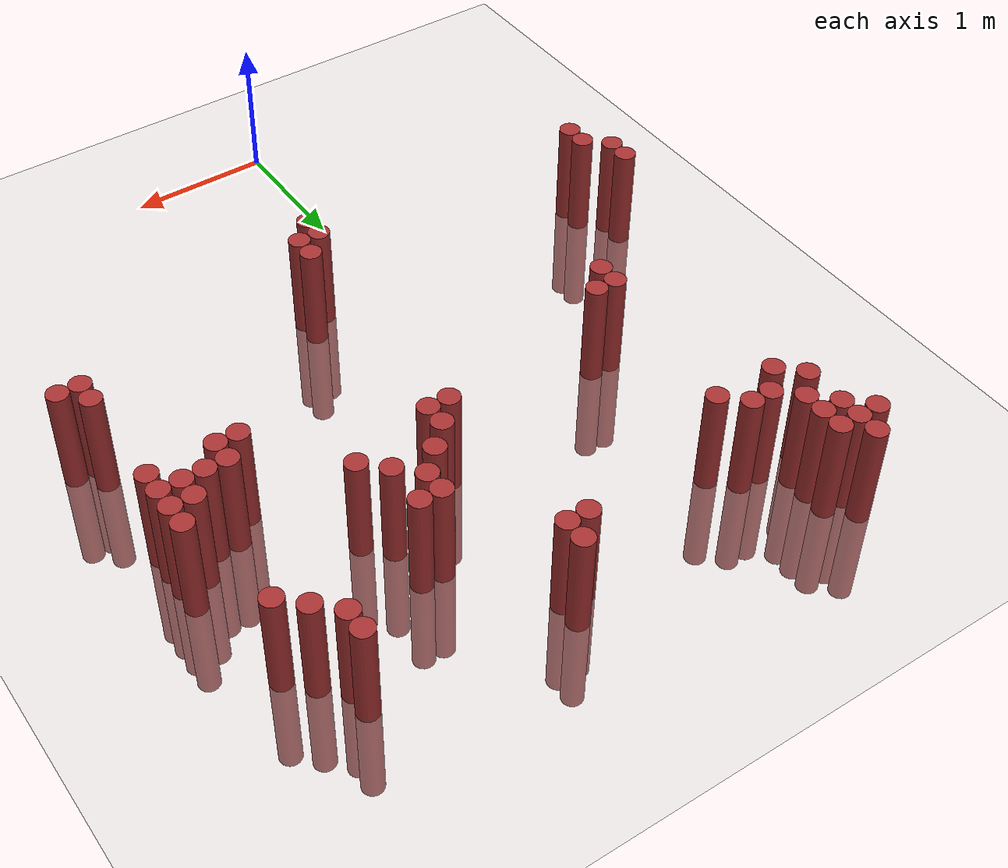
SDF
<sdf version="1.6">
 <world name="default">
  <model name="ground_plane">
   <static>1</static>
   <link name="link">
    <collision name="collision">
     <geometry><plane><normal>0 0 1</normal><size>100 100</size></plane></geometry>
     <surface><friction><ode><mu>100</mu><mu2>50</mu2></ode></friction></surface>
    </collision>
    <visual name="visual">
     <cast_shadows>0</cast_shadows>
     <geometry><plane><normal>0 0 1</normal><size>100 100</size></plane></geometry>
     <material>
      <script><uri>file://media/materials/scripts/gazebo.material</uri><name>Gazebo/Grey</name></script>
     </material>
    </visual>
   </link>
  </model>
  <model name="unit_cylinder_320">
   <static>1</static>
   <pose>-1.775000 2.125000 0.000000 0.000000 0.000000 0.000000</pose>
   <link name="link">
    <inertial>
     <mass>1</mass>
     <inertia><ixx>0.145833</ixx><ixy>0</ixy><ixz>0</ixz><iyy>0.145833</iyy><iyz>0</iyz><izz>0.125</izz></inertia>
    </inertial>
    <collision name="collision">
     <geometry><cylinder><radius>0.075000</radius><length>1.5</length></cylinder></geometry>
    </collision>
    <visual name="visual">
     <geometry><cylinder><radius>0.075000</radius><length>1.5</length></cylinder></geometry>
     <material>
      <ambient>0.648000 0.192000 0.192000 1</ambient>
      <diffuse>0.648000 0.192000 0.192000 1</diffuse>
     </material>
     <material>
      <script><name>Gazebo/Grey</name><uri>file://media/materials/scripts/gazebo.material</uri></script>
     </material>
    </visual>
   </link>
  </model>
  <model name="unit_cylinder_321">
   <static>1</static>
   <pose>-1.775000 2.275000 0.000000 0.000000 0.000000 0.000000</pose>
   <link name="link">
    <inertial>
     <mass>1</mass>
     <inertia><ixx>0.145833</ixx><ixy>0</ixy><ixz>0</ixz><iyy>0.145833</iyy><iyz>0</iyz><izz>0.125</izz></inertia>
    </inertial>
    <collision name="collision">
     <geometry><cylinder><radius>0.075000</radius><length>1.5</length></cylinder></geometry>
    </collision>
    <visual name="visual">
     <geometry><cylinder><radius>0.075000</radius><length>1.5</length></cylinder></geometry>
     <material>
      <ambient>0.648000 0.192000 0.192000 1</ambient>
      <diffuse>0.648000 0.192000 0.192000 1</diffuse>
     </material>
     <material>
      <script><name>Gazebo/Grey</name><uri>file://media/materials/scripts/gazebo.material</uri></script>
     </material>
    </visual>
   </link>
  </model>
  <model name="unit_cylinder_322">
   <static>1</static>
   <pose>-1.625000 1.825000 0.000000 0.000000 0.000000 0.000000</pose>
   <link name="link">
    <inertial>
     <mass>1</mass>
     <inertia><ixx>0.145833</ixx><ixy>0</ixy><ixz>0</ixz><iyy>0.145833</iyy><iyz>0</iyz><izz>0.125</izz></inertia>
    </inertial>
    <collision name="collision">
     <geometry><cylinder><radius>0.075000</radius><length>1.5</length></cylinder></geometry>
    </collision>
    <visual name="visual">
     <geometry><cylinder><radius>0.075000</radius><length>1.5</length></cylinder></geometry>
     <material>
      <ambient>0.648000 0.192000 0.192000 1</ambient>
      <diffuse>0.648000 0.192000 0.192000 1</diffuse>
     </material>
     <material>
      <script><name>Gazebo/Grey</name><uri>file://media/materials/scripts/gazebo.material</uri></script>
     </material>
    </visual>
   </link>
  </model>
  <model name="unit_cylinder_323">
   <static>1</static>
   <pose>-1.625000 1.975000 0.000000 0.000000 0.000000 0.000000</pose>
   <link name="link">
    <inertial>
     <mass>1</mass>
     <inertia><ixx>0.145833</ixx><ixy>0</ixy><ixz>0</ixz><iyy>0.145833</iyy><iyz>0</iyz><izz>0.125</izz></inertia>
    </inertial>
    <collision name="collision">
     <geometry><cylinder><radius>0.075000</radius><length>1.5</length></cylinder></geometry>
    </collision>
    <visual name="visual">
     <geometry><cylinder><radius>0.075000</radius><length>1.5</length></cylinder></geometry>
     <material>
      <ambient>0.648000 0.192000 0.192000 1</ambient>
      <diffuse>0.648000 0.192000 0.192000 1</diffuse>
     </material>
     <material>
      <script><name>Gazebo/Grey</name><uri>file://media/materials/scripts/gazebo.material</uri></script>
     </material>
    </visual>
   </link>
  </model>
  <model name="unit_cylinder_324">
   <static>1</static>
   <pose>-1.475000 5.125000 0.000000 0.000000 0.000000 0.000000</pose>
   <link name="link">
    <inertial>
     <mass>1</mass>
     <inertia><ixx>0.145833</ixx><ixy>0</ixy><ixz>0</ixz><iyy>0.145833</iyy><iyz>0</iyz><izz>0.125</izz></inertia>
    </inertial>
    <collision name="collision">
     <geometry><cylinder><radius>0.075000</radius><length>1.5</length></cylinder></geometry>
    </collision>
    <visual name="visual">
     <geometry><cylinder><radius>0.075000</radius><length>1.5</length></cylinder></geometry>
     <material>
      <ambient>0.648000 0.192000 0.192000 1</ambient>
      <diffuse>0.648000 0.192000 0.192000 1</diffuse>
     </material>
     <material>
      <script><name>Gazebo/Grey</name><uri>file://media/materials/scripts/gazebo.material</uri></script>
     </material>
    </visual>
   </link>
  </model>
  <model name="unit_cylinder_325">
   <static>1</static>
   <pose>-1.325000 4.675000 0.000000 0.000000 0.000000 0.000000</pose>
   <link name="link">
    <inertial>
     <mass>1</mass>
     <inertia><ixx>0.145833</ixx><ixy>0</ixy><ixz>0</ixz><iyy>0.145833</iyy><iyz>0</iyz><izz>0.125</izz></inertia>
    </inertial>
    <collision name="collision">
     <geometry><cylinder><radius>0.075000</radius><length>1.5</length></cylinder></geometry>
    </collision>
    <visual name="visual">
     <geometry><cylinder><radius>0.075000</radius><length>1.5</length></cylinder></geometry>
     <material>
      <ambient>0.648000 0.192000 0.192000 1</ambient>
      <diffuse>0.648000 0.192000 0.192000 1</diffuse>
     </material>
     <material>
      <script><name>Gazebo/Grey</name><uri>file://media/materials/scripts/gazebo.material</uri></script>
     </material>
    </visual>
   </link>
  </model>
  <model name="unit_cylinder_326">
   <static>1</static>
   <pose>-1.325000 4.975000 0.000000 0.000000 0.000000 0.000000</pose>
   <link name="link">
    <inertial>
     <mass>1</mass>
     <inertia><ixx>0.145833</ixx><ixy>0</ixy><ixz>0</ixz><iyy>0.145833</iyy><iyz>0</iyz><izz>0.125</izz></inertia>
    </inertial>
    <collision name="collision">
     <geometry><cylinder><radius>0.075000</radius><length>1.5</length></cylinder></geometry>
    </collision>
    <visual name="visual">
     <geometry><cylinder><radius>0.075000</radius><length>1.5</length></cylinder></geometry>
     <material>
      <ambient>0.648000 0.192000 0.192000 1</ambient>
      <diffuse>0.648000 0.192000 0.192000 1</diffuse>
     </material>
     <material>
      <script><name>Gazebo/Grey</name><uri>file://media/materials/scripts/gazebo.material</uri></script>
     </material>
    </visual>
   </link>
  </model>
  <model name="unit_cylinder_327">
   <static>1</static>
   <pose>-1.325000 5.125000 0.000000 0.000000 0.000000 0.000000</pose>
   <link name="link">
    <inertial>
     <mass>1</mass>
     <inertia><ixx>0.145833</ixx><ixy>0</ixy><ixz>0</ixz><iyy>0.145833</iyy><iyz>0</iyz><izz>0.125</izz></inertia>
    </inertial>
    <collision name="collision">
     <geometry><cylinder><radius>0.075000</radius><length>1.5</length></cylinder></geometry>
    </collision>
    <visual name="visual">
     <geometry><cylinder><radius>0.075000</radius><length>1.5</length></cylinder></geometry>
     <material>
      <ambient>0.648000 0.192000 0.192000 1</ambient>
      <diffuse>0.648000 0.192000 0.192000 1</diffuse>
     </material>
     <material>
      <script><name>Gazebo/Grey</name><uri>file://media/materials/scripts/gazebo.material</uri></script>
     </material>
    </visual>
   </link>
  </model>
  <model name="unit_cylinder_328">
   <static>1</static>
   <pose>-1.325000 5.275000 0.000000 0.000000 0.000000 0.000000</pose>
   <link name="link">
    <inertial>
     <mass>1</mass>
     <inertia><ixx>0.145833</ixx><ixy>0</ixy><ixz>0</ixz><iyy>0.145833</iyy><iyz>0</iyz><izz>0.125</izz></inertia>
    </inertial>
    <collision name="collision">
     <geometry><cylinder><radius>0.075000</radius><length>1.5</length></cylinder></geometry>
    </collision>
    <visual name="visual">
     <geometry><cylinder><radius>0.075000</radius><length>1.5</length></cylinder></geometry>
     <material>
      <ambient>0.648000 0.192000 0.192000 1</ambient>
      <diffuse>0.648000 0.192000 0.192000 1</diffuse>
     </material>
     <material>
      <script><name>Gazebo/Grey</name><uri>file://media/materials/scripts/gazebo.material</uri></script>
     </material>
    </visual>
   </link>
  </model>
  <model name="unit_cylinder_330">
   <static>1</static>
   <pose>-1.175000 4.525000 0.000000 0.000000 0.000000 0.000000</pose>
   <link name="link">
    <inertial>
     <mass>1</mass>
     <inertia><ixx>0.145833</ixx><ixy>0</ixy><ixz>0</ixz><iyy>0.145833</iyy><iyz>0</iyz><izz>0.125</izz></inertia>
    </inertial>
    <collision name="collision">
     <geometry><cylinder><radius>0.075000</radius><length>1.5</length></cylinder></geometry>
    </collision>
    <visual name="visual">
     <geometry><cylinder><radius>0.075000</radius><length>1.5</length></cylinder></geometry>
     <material>
      <ambient>0.648000 0.192000 0.192000 1</ambient>
      <diffuse>0.648000 0.192000 0.192000 1</diffuse>
     </material>
     <material>
      <script><name>Gazebo/Grey</name><uri>file://media/materials/scripts/gazebo.material</uri></script>
     </material>
    </visual>
   </link>
  </model>
  <model name="unit_cylinder_331">
   <static>1</static>
   <pose>-1.175000 4.825000 0.000000 0.000000 0.000000 0.000000</pose>
   <link name="link">
    <inertial>
     <mass>1</mass>
     <inertia><ixx>0.145833</ixx><ixy>0</ixy><ixz>0</ixz><iyy>0.145833</iyy><iyz>0</iyz><izz>0.125</izz></inertia>
    </inertial>
    <collision name="collision">
     <geometry><cylinder><radius>0.075000</radius><length>1.5</length></cylinder></geometry>
    </collision>
    <visual name="visual">
     <geometry><cylinder><radius>0.075000</radius><length>1.5</length></cylinder></geometry>
     <material>
      <ambient>0.648000 0.192000 0.192000 1</ambient>
      <diffuse>0.648000 0.192000 0.192000 1</diffuse>
     </material>
     <material>
      <script><name>Gazebo/Grey</name><uri>file://media/materials/scripts/gazebo.material</uri></script>
     </material>
    </visual>
   </link>
  </model>
  <model name="unit_cylinder_332">
   <static>1</static>
   <pose>-1.175000 4.975000 0.000000 0.000000 0.000000 0.000000</pose>
   <link name="link">
    <inertial>
     <mass>1</mass>
     <inertia><ixx>0.145833</ixx><ixy>0</ixy><ixz>0</ixz><iyy>0.145833</iyy><iyz>0</iyz><izz>0.125</izz></inertia>
    </inertial>
    <collision name="collision">
     <geometry><cylinder><radius>0.075000</radius><length>1.5</length></cylinder></geometry>
    </collision>
    <visual name="visual">
     <geometry><cylinder><radius>0.075000</radius><length>1.5</length></cylinder></geometry>
     <material>
      <ambient>0.648000 0.192000 0.192000 1</ambient>
      <diffuse>0.648000 0.192000 0.192000 1</diffuse>
     </material>
     <material>
      <script><name>Gazebo/Grey</name><uri>file://media/materials/scripts/gazebo.material</uri></script>
     </material>
    </visual>
   </link>
  </model>
  <model name="unit_cylinder_333">
   <static>1</static>
   <pose>-1.175000 5.125000 0.000000 0.000000 0.000000 0.000000</pose>
   <link name="link">
    <inertial>
     <mass>1</mass>
     <inertia><ixx>0.145833</ixx><ixy>0</ixy><ixz>0</ixz><iyy>0.145833</iyy><iyz>0</iyz><izz>0.125</izz></inertia>
    </inertial>
    <collision name="collision">
     <geometry><cylinder><radius>0.075000</radius><length>1.5</length></cylinder></geometry>
    </collision>
    <visual name="visual">
     <geometry><cylinder><radius>0.075000</radius><length>1.5</length></cylinder></geometry>
     <material>
      <ambient>0.648000 0.192000 0.192000 1</ambient>
      <diffuse>0.648000 0.192000 0.192000 1</diffuse>
     </material>
     <material>
      <script><name>Gazebo/Grey</name><uri>file://media/materials/scripts/gazebo.material</uri></script>
     </material>
    </visual>
   </link>
  </model>
  <model name="unit_cylinder_334">
   <static>1</static>
   <pose>-1.025000 4.675000 0.000000 0.000000 0.000000 0.000000</pose>
   <link name="link">
    <inertial>
     <mass>1</mass>
     <inertia><ixx>0.145833</ixx><ixy>0</ixy><ixz>0</ixz><iyy>0.145833</iyy><iyz>0</iyz><izz>0.125</izz></inertia>
    </inertial>
    <collision name="collision">
     <geometry><cylinder><radius>0.075000</radius><length>1.5</length></cylinder></geometry>
    </collision>
    <visual name="visual">
     <geometry><cylinder><radius>0.075000</radius><length>1.5</length></cylinder></geometry>
     <material>
      <ambient>0.648000 0.192000 0.192000 1</ambient>
      <diffuse>0.648000 0.192000 0.192000 1</diffuse>
     </material>
     <material>
      <script><name>Gazebo/Grey</name><uri>file://media/materials/scripts/gazebo.material</uri></script>
     </material>
    </visual>
   </link>
  </model>
  <model name="unit_cylinder_335">
   <static>1</static>
   <pose>-0.875000 3.175000 0.000000 0.000000 0.000000 0.000000</pose>
   <link name="link">
    <inertial>
     <mass>1</mass>
     <inertia><ixx>0.145833</ixx><ixy>0</ixy><ixz>0</ixz><iyy>0.145833</iyy><iyz>0</iyz><izz>0.125</izz></inertia>
    </inertial>
    <collision name="collision">
     <geometry><cylinder><radius>0.075000</radius><length>1.5</length></cylinder></geometry>
    </collision>
    <visual name="visual">
     <geometry><cylinder><radius>0.075000</radius><length>1.5</length></cylinder></geometry>
     <material>
      <ambient>0.648000 0.192000 0.192000 1</ambient>
      <diffuse>0.648000 0.192000 0.192000 1</diffuse>
     </material>
     <material>
      <script><name>Gazebo/Grey</name><uri>file://media/materials/scripts/gazebo.material</uri></script>
     </material>
    </visual>
   </link>
  </model>
  <model name="unit_cylinder_336">
   <static>1</static>
   <pose>-0.875000 3.325000 0.000000 0.000000 0.000000 0.000000</pose>
   <link name="link">
    <inertial>
     <mass>1</mass>
     <inertia><ixx>0.145833</ixx><ixy>0</ixy><ixz>0</ixz><iyy>0.145833</iyy><iyz>0</iyz><izz>0.125</izz></inertia>
    </inertial>
    <collision name="collision">
     <geometry><cylinder><radius>0.075000</radius><length>1.5</length></cylinder></geometry>
    </collision>
    <visual name="visual">
     <geometry><cylinder><radius>0.075000</radius><length>1.5</length></cylinder></geometry>
     <material>
      <ambient>0.648000 0.192000 0.192000 1</ambient>
      <diffuse>0.648000 0.192000 0.192000 1</diffuse>
     </material>
     <material>
      <script><name>Gazebo/Grey</name><uri>file://media/materials/scripts/gazebo.material</uri></script>
     </material>
    </visual>
   </link>
  </model>
  <model name="unit_cylinder_337">
   <static>1</static>
   <pose>-0.875000 4.675000 0.000000 0.000000 0.000000 0.000000</pose>
   <link name="link">
    <inertial>
     <mass>1</mass>
     <inertia><ixx>0.145833</ixx><ixy>0</ixy><ixz>0</ixz><iyy>0.145833</iyy><iyz>0</iyz><izz>0.125</izz></inertia>
    </inertial>
    <collision name="collision">
     <geometry><cylinder><radius>0.075000</radius><length>1.5</length></cylinder></geometry>
    </collision>
    <visual name="visual">
     <geometry><cylinder><radius>0.075000</radius><length>1.5</length></cylinder></geometry>
     <material>
      <ambient>0.648000 0.192000 0.192000 1</ambient>
      <diffuse>0.648000 0.192000 0.192000 1</diffuse>
     </material>
     <material>
      <script><name>Gazebo/Grey</name><uri>file://media/materials/scripts/gazebo.material</uri></script>
     </material>
    </visual>
   </link>
  </model>
  <model name="unit_cylinder_338">
   <static>1</static>
   <pose>-0.725000 3.325000 0.000000 0.000000 0.000000 0.000000</pose>
   <link name="link">
    <inertial>
     <mass>1</mass>
     <inertia><ixx>0.145833</ixx><ixy>0</ixy><ixz>0</ixz><iyy>0.145833</iyy><iyz>0</iyz><izz>0.125</izz></inertia>
    </inertial>
    <collision name="collision">
     <geometry><cylinder><radius>0.075000</radius><length>1.5</length></cylinder></geometry>
    </collision>
    <visual name="visual">
     <geometry><cylinder><radius>0.075000</radius><length>1.5</length></cylinder></geometry>
     <material>
      <ambient>0.648000 0.192000 0.192000 1</ambient>
      <diffuse>0.648000 0.192000 0.192000 1</diffuse>
     </material>
     <material>
      <script><name>Gazebo/Grey</name><uri>file://media/materials/scripts/gazebo.material</uri></script>
     </material>
    </visual>
   </link>
  </model>
  <model name="unit_cylinder_339">
   <static>1</static>
   <pose>-0.725000 4.525000 0.000000 0.000000 0.000000 0.000000</pose>
   <link name="link">
    <inertial>
     <mass>1</mass>
     <inertia><ixx>0.145833</ixx><ixy>0</ixy><ixz>0</ixz><iyy>0.145833</iyy><iyz>0</iyz><izz>0.125</izz></inertia>
    </inertial>
    <collision name="collision">
     <geometry><cylinder><radius>0.075000</radius><length>1.5</length></cylinder></geometry>
    </collision>
    <visual name="visual">
     <geometry><cylinder><radius>0.075000</radius><length>1.5</length></cylinder></geometry>
     <material>
      <ambient>0.648000 0.192000 0.192000 1</ambient>
      <diffuse>0.648000 0.192000 0.192000 1</diffuse>
     </material>
     <material>
      <script><name>Gazebo/Grey</name><uri>file://media/materials/scripts/gazebo.material</uri></script>
     </material>
    </visual>
   </link>
  </model>
  <model name="unit_cylinder_354">
   <static>1</static>
   <pose>0.475000 1.675000 0.000000 0.000000 0.000000 0.000000</pose>
   <link name="link">
    <inertial>
     <mass>1</mass>
     <inertia><ixx>0.145833</ixx><ixy>0</ixy><ixz>0</ixz><iyy>0.145833</iyy><iyz>0</iyz><izz>0.125</izz></inertia>
    </inertial>
    <collision name="collision">
     <geometry><cylinder><radius>0.075000</radius><length>1.5</length></cylinder></geometry>
    </collision>
    <visual name="visual">
     <geometry><cylinder><radius>0.075000</radius><length>1.5</length></cylinder></geometry>
     <material>
      <ambient>0.648000 0.192000 0.192000 1</ambient>
      <diffuse>0.648000 0.192000 0.192000 1</diffuse>
     </material>
     <material>
      <script><name>Gazebo/Grey</name><uri>file://media/materials/scripts/gazebo.material</uri></script>
     </material>
    </visual>
   </link>
  </model>
  <model name="unit_cylinder_355">
   <static>1</static>
   <pose>0.475000 1.825000 0.000000 0.000000 0.000000 0.000000</pose>
   <link name="link">
    <inertial>
     <mass>1</mass>
     <inertia><ixx>0.145833</ixx><ixy>0</ixy><ixz>0</ixz><iyy>0.145833</iyy><iyz>0</iyz><izz>0.125</izz></inertia>
    </inertial>
    <collision name="collision">
     <geometry><cylinder><radius>0.075000</radius><length>1.5</length></cylinder></geometry>
    </collision>
    <visual name="visual">
     <geometry><cylinder><radius>0.075000</radius><length>1.5</length></cylinder></geometry>
     <material>
      <ambient>0.648000 0.192000 0.192000 1</ambient>
      <diffuse>0.648000 0.192000 0.192000 1</diffuse>
     </material>
     <material>
      <script><name>Gazebo/Grey</name><uri>file://media/materials/scripts/gazebo.material</uri></script>
     </material>
    </visual>
   </link>
  </model>
  <model name="unit_cylinder_356">
   <static>1</static>
   <pose>0.475000 4.825000 0.000000 0.000000 0.000000 0.000000</pose>
   <link name="link">
    <inertial>
     <mass>1</mass>
     <inertia><ixx>0.145833</ixx><ixy>0</ixy><ixz>0</ixz><iyy>0.145833</iyy><iyz>0</iyz><izz>0.125</izz></inertia>
    </inertial>
    <collision name="collision">
     <geometry><cylinder><radius>0.075000</radius><length>1.5</length></cylinder></geometry>
    </collision>
    <visual name="visual">
     <geometry><cylinder><radius>0.075000</radius><length>1.5</length></cylinder></geometry>
     <material>
      <ambient>0.648000 0.192000 0.192000 1</ambient>
      <diffuse>0.648000 0.192000 0.192000 1</diffuse>
     </material>
     <material>
      <script><name>Gazebo/Grey</name><uri>file://media/materials/scripts/gazebo.material</uri></script>
     </material>
    </visual>
   </link>
  </model>
  <model name="unit_cylinder_357">
   <static>1</static>
   <pose>0.625000 1.825000 0.000000 0.000000 0.000000 0.000000</pose>
   <link name="link">
    <inertial>
     <mass>1</mass>
     <inertia><ixx>0.145833</ixx><ixy>0</ixy><ixz>0</ixz><iyy>0.145833</iyy><iyz>0</iyz><izz>0.125</izz></inertia>
    </inertial>
    <collision name="collision">
     <geometry><cylinder><radius>0.075000</radius><length>1.5</length></cylinder></geometry>
    </collision>
    <visual name="visual">
     <geometry><cylinder><radius>0.075000</radius><length>1.5</length></cylinder></geometry>
     <material>
      <ambient>0.648000 0.192000 0.192000 1</ambient>
      <diffuse>0.648000 0.192000 0.192000 1</diffuse>
     </material>
     <material>
      <script><name>Gazebo/Grey</name><uri>file://media/materials/scripts/gazebo.material</uri></script>
     </material>
    </visual>
   </link>
  </model>
  <model name="unit_cylinder_358">
   <static>1</static>
   <pose>0.625000 1.975000 0.000000 0.000000 0.000000 0.000000</pose>
   <link name="link">
    <inertial>
     <mass>1</mass>
     <inertia><ixx>0.145833</ixx><ixy>0</ixy><ixz>0</ixz><iyy>0.145833</iyy><iyz>0</iyz><izz>0.125</izz></inertia>
    </inertial>
    <collision name="collision">
     <geometry><cylinder><radius>0.075000</radius><length>1.5</length></cylinder></geometry>
    </collision>
    <visual name="visual">
     <geometry><cylinder><radius>0.075000</radius><length>1.5</length></cylinder></geometry>
     <material>
      <ambient>0.648000 0.192000 0.192000 1</ambient>
      <diffuse>0.648000 0.192000 0.192000 1</diffuse>
     </material>
     <material>
      <script><name>Gazebo/Grey</name><uri>file://media/materials/scripts/gazebo.material</uri></script>
     </material>
    </visual>
   </link>
  </model>
  <model name="unit_cylinder_359">
   <static>1</static>
   <pose>0.625000 3.625000 0.000000 0.000000 0.000000 0.000000</pose>
   <link name="link">
    <inertial>
     <mass>1</mass>
     <inertia><ixx>0.145833</ixx><ixy>0</ixy><ixz>0</ixz><iyy>0.145833</iyy><iyz>0</iyz><izz>0.125</izz></inertia>
    </inertial>
    <collision name="collision">
     <geometry><cylinder><radius>0.075000</radius><length>1.5</length></cylinder></geometry>
    </collision>
    <visual name="visual">
     <geometry><cylinder><radius>0.075000</radius><length>1.5</length></cylinder></geometry>
     <material>
      <ambient>0.648000 0.192000 0.192000 1</ambient>
      <diffuse>0.648000 0.192000 0.192000 1</diffuse>
     </material>
     <material>
      <script><name>Gazebo/Grey</name><uri>file://media/materials/scripts/gazebo.material</uri></script>
     </material>
    </visual>
   </link>
  </model>
  <model name="unit_cylinder_360">
   <static>1</static>
   <pose>0.625000 4.825000 0.000000 0.000000 0.000000 0.000000</pose>
   <link name="link">
    <inertial>
     <mass>1</mass>
     <inertia><ixx>0.145833</ixx><ixy>0</ixy><ixz>0</ixz><iyy>0.145833</iyy><iyz>0</iyz><izz>0.125</izz></inertia>
    </inertial>
    <collision name="collision">
     <geometry><cylinder><radius>0.075000</radius><length>1.5</length></cylinder></geometry>
    </collision>
    <visual name="visual">
     <geometry><cylinder><radius>0.075000</radius><length>1.5</length></cylinder></geometry>
     <material>
      <ambient>0.648000 0.192000 0.192000 1</ambient>
      <diffuse>0.648000 0.192000 0.192000 1</diffuse>
     </material>
     <material>
      <script><name>Gazebo/Grey</name><uri>file://media/materials/scripts/gazebo.material</uri></script>
     </material>
    </visual>
   </link>
  </model>
  <model name="unit_cylinder_361">
   <static>1</static>
   <pose>0.625000 4.975000 0.000000 0.000000 0.000000 0.000000</pose>
   <link name="link">
    <inertial>
     <mass>1</mass>
     <inertia><ixx>0.145833</ixx><ixy>0</ixy><ixz>0</ixz><iyy>0.145833</iyy><iyz>0</iyz><izz>0.125</izz></inertia>
    </inertial>
    <collision name="collision">
     <geometry><cylinder><radius>0.075000</radius><length>1.5</length></cylinder></geometry>
    </collision>
    <visual name="visual">
     <geometry><cylinder><radius>0.075000</radius><length>1.5</length></cylinder></geometry>
     <material>
      <ambient>0.648000 0.192000 0.192000 1</ambient>
      <diffuse>0.648000 0.192000 0.192000 1</diffuse>
     </material>
     <material>
      <script><name>Gazebo/Grey</name><uri>file://media/materials/scripts/gazebo.material</uri></script>
     </material>
    </visual>
   </link>
  </model>
  <model name="unit_cylinder_362">
   <static>1</static>
   <pose>0.775000 3.625000 0.000000 0.000000 0.000000 0.000000</pose>
   <link name="link">
    <inertial>
     <mass>1</mass>
     <inertia><ixx>0.145833</ixx><ixy>0</ixy><ixz>0</ixz><iyy>0.145833</iyy><iyz>0</iyz><izz>0.125</izz></inertia>
    </inertial>
    <collision name="collision">
     <geometry><cylinder><radius>0.075000</radius><length>1.5</length></cylinder></geometry>
    </collision>
    <visual name="visual">
     <geometry><cylinder><radius>0.075000</radius><length>1.5</length></cylinder></geometry>
     <material>
      <ambient>0.648000 0.192000 0.192000 1</ambient>
      <diffuse>0.648000 0.192000 0.192000 1</diffuse>
     </material>
     <material>
      <script><name>Gazebo/Grey</name><uri>file://media/materials/scripts/gazebo.material</uri></script>
     </material>
    </visual>
   </link>
  </model>
  <model name="unit_cylinder_363">
   <static>1</static>
   <pose>0.775000 3.775000 0.000000 0.000000 0.000000 0.000000</pose>
   <link name="link">
    <inertial>
     <mass>1</mass>
     <inertia><ixx>0.145833</ixx><ixy>0</ixy><ixz>0</ixz><iyy>0.145833</iyy><iyz>0</iyz><izz>0.125</izz></inertia>
    </inertial>
    <collision name="collision">
     <geometry><cylinder><radius>0.075000</radius><length>1.5</length></cylinder></geometry>
    </collision>
    <visual name="visual">
     <geometry><cylinder><radius>0.075000</radius><length>1.5</length></cylinder></geometry>
     <material>
      <ambient>0.648000 0.192000 0.192000 1</ambient>
      <diffuse>0.648000 0.192000 0.192000 1</diffuse>
     </material>
     <material>
      <script><name>Gazebo/Grey</name><uri>file://media/materials/scripts/gazebo.material</uri></script>
     </material>
    </visual>
   </link>
  </model>
  <model name="unit_cylinder_364">
   <static>1</static>
   <pose>0.925000 3.925000 0.000000 0.000000 0.000000 0.000000</pose>
   <link name="link">
    <inertial>
     <mass>1</mass>
     <inertia><ixx>0.145833</ixx><ixy>0</ixy><ixz>0</ixz><iyy>0.145833</iyy><iyz>0</iyz><izz>0.125</izz></inertia>
    </inertial>
    <collision name="collision">
     <geometry><cylinder><radius>0.075000</radius><length>1.5</length></cylinder></geometry>
    </collision>
    <visual name="visual">
     <geometry><cylinder><radius>0.075000</radius><length>1.5</length></cylinder></geometry>
     <material>
      <ambient>0.648000 0.192000 0.192000 1</ambient>
      <diffuse>0.648000 0.192000 0.192000 1</diffuse>
     </material>
     <material>
      <script><name>Gazebo/Grey</name><uri>file://media/materials/scripts/gazebo.material</uri></script>
     </material>
    </visual>
   </link>
  </model>
  <model name="unit_cylinder_365">
   <static>1</static>
   <pose>1.075000 4.075000 0.000000 0.000000 0.000000 0.000000</pose>
   <link name="link">
    <inertial>
     <mass>1</mass>
     <inertia><ixx>0.145833</ixx><ixy>0</ixy><ixz>0</ixz><iyy>0.145833</iyy><iyz>0</iyz><izz>0.125</izz></inertia>
    </inertial>
    <collision name="collision">
     <geometry><cylinder><radius>0.075000</radius><length>1.5</length></cylinder></geometry>
    </collision>
    <visual name="visual">
     <geometry><cylinder><radius>0.075000</radius><length>1.5</length></cylinder></geometry>
     <material>
      <ambient>0.648000 0.192000 0.192000 1</ambient>
      <diffuse>0.648000 0.192000 0.192000 1</diffuse>
     </material>
     <material>
      <script><name>Gazebo/Grey</name><uri>file://media/materials/scripts/gazebo.material</uri></script>
     </material>
    </visual>
   </link>
  </model>
  <model name="unit_cylinder_366">
   <static>1</static>
   <pose>1.075000 4.225000 0.000000 0.000000 0.000000 0.000000</pose>
   <link name="link">
    <inertial>
     <mass>1</mass>
     <inertia><ixx>0.145833</ixx><ixy>0</ixy><ixz>0</ixz><iyy>0.145833</iyy><iyz>0</iyz><izz>0.125</izz></inertia>
    </inertial>
    <collision name="collision">
     <geometry><cylinder><radius>0.075000</radius><length>1.5</length></cylinder></geometry>
    </collision>
    <visual name="visual">
     <geometry><cylinder><radius>0.075000</radius><length>1.5</length></cylinder></geometry>
     <material>
      <ambient>0.648000 0.192000 0.192000 1</ambient>
      <diffuse>0.648000 0.192000 0.192000 1</diffuse>
     </material>
     <material>
      <script><name>Gazebo/Grey</name><uri>file://media/materials/scripts/gazebo.material</uri></script>
     </material>
    </visual>
   </link>
  </model>
  <model name="unit_cylinder_368">
   <static>1</static>
   <pose>1.225000 3.925000 0.000000 0.000000 0.000000 0.000000</pose>
   <link name="link">
    <inertial>
     <mass>1</mass>
     <inertia><ixx>0.145833</ixx><ixy>0</ixy><ixz>0</ixz><iyy>0.145833</iyy><iyz>0</iyz><izz>0.125</izz></inertia>
    </inertial>
    <collision name="collision">
     <geometry><cylinder><radius>0.075000</radius><length>1.5</length></cylinder></geometry>
    </collision>
    <visual name="visual">
     <geometry><cylinder><radius>0.075000</radius><length>1.5</length></cylinder></geometry>
     <material>
      <ambient>0.648000 0.192000 0.192000 1</ambient>
      <diffuse>0.648000 0.192000 0.192000 1</diffuse>
     </material>
     <material>
      <script><name>Gazebo/Grey</name><uri>file://media/materials/scripts/gazebo.material</uri></script>
     </material>
    </visual>
   </link>
  </model>
  <model name="unit_cylinder_369">
   <static>1</static>
   <pose>1.225000 4.225000 0.000000 0.000000 0.000000 0.000000</pose>
   <link name="link">
    <inertial>
     <mass>1</mass>
     <inertia><ixx>0.145833</ixx><ixy>0</ixy><ixz>0</ixz><iyy>0.145833</iyy><iyz>0</iyz><izz>0.125</izz></inertia>
    </inertial>
    <collision name="collision">
     <geometry><cylinder><radius>0.075000</radius><length>1.5</length></cylinder></geometry>
    </collision>
    <visual name="visual">
     <geometry><cylinder><radius>0.075000</radius><length>1.5</length></cylinder></geometry>
     <material>
      <ambient>0.648000 0.192000 0.192000 1</ambient>
      <diffuse>0.648000 0.192000 0.192000 1</diffuse>
     </material>
     <material>
      <script><name>Gazebo/Grey</name><uri>file://media/materials/scripts/gazebo.material</uri></script>
     </material>
    </visual>
   </link>
  </model>
  <model name="unit_cylinder_372">
   <static>1</static>
   <pose>1.375000 3.775000 0.000000 0.000000 0.000000 0.000000</pose>
   <link name="link">
    <inertial>
     <mass>1</mass>
     <inertia><ixx>0.145833</ixx><ixy>0</ixy><ixz>0</ixz><iyy>0.145833</iyy><iyz>0</iyz><izz>0.125</izz></inertia>
    </inertial>
    <collision name="collision">
     <geometry><cylinder><radius>0.075000</radius><length>1.5</length></cylinder></geometry>
    </collision>
    <visual name="visual">
     <geometry><cylinder><radius>0.075000</radius><length>1.5</length></cylinder></geometry>
     <material>
      <ambient>0.648000 0.192000 0.192000 1</ambient>
      <diffuse>0.648000 0.192000 0.192000 1</diffuse>
     </material>
     <material>
      <script><name>Gazebo/Grey</name><uri>file://media/materials/scripts/gazebo.material</uri></script>
     </material>
    </visual>
   </link>
  </model>
  <model name="unit_cylinder_374">
   <static>1</static>
   <pose>1.825000 3.175000 0.000000 0.000000 0.000000 0.000000</pose>
   <link name="link">
    <inertial>
     <mass>1</mass>
     <inertia><ixx>0.145833</ixx><ixy>0</ixy><ixz>0</ixz><iyy>0.145833</iyy><iyz>0</iyz><izz>0.125</izz></inertia>
    </inertial>
    <collision name="collision">
     <geometry><cylinder><radius>0.075000</radius><length>1.5</length></cylinder></geometry>
    </collision>
    <visual name="visual">
     <geometry><cylinder><radius>0.075000</radius><length>1.5</length></cylinder></geometry>
     <material>
      <ambient>0.648000 0.192000 0.192000 1</ambient>
      <diffuse>0.648000 0.192000 0.192000 1</diffuse>
     </material>
     <material>
      <script><name>Gazebo/Grey</name><uri>file://media/materials/scripts/gazebo.material</uri></script>
     </material>
    </visual>
   </link>
  </model>
  <model name="unit_cylinder_376">
   <static>1</static>
   <pose>1.975000 3.175000 0.000000 0.000000 0.000000 0.000000</pose>
   <link name="link">
    <inertial>
     <mass>1</mass>
     <inertia><ixx>0.145833</ixx><ixy>0</ixy><ixz>0</ixz><iyy>0.145833</iyy><iyz>0</iyz><izz>0.125</izz></inertia>
    </inertial>
    <collision name="collision">
     <geometry><cylinder><radius>0.075000</radius><length>1.5</length></cylinder></geometry>
    </collision>
    <visual name="visual">
     <geometry><cylinder><radius>0.075000</radius><length>1.5</length></cylinder></geometry>
     <material>
      <ambient>0.648000 0.192000 0.192000 1</ambient>
      <diffuse>0.648000 0.192000 0.192000 1</diffuse>
     </material>
     <material>
      <script><name>Gazebo/Grey</name><uri>file://media/materials/scripts/gazebo.material</uri></script>
     </material>
    </visual>
   </link>
  </model>
  <model name="unit_cylinder_377">
   <static>1</static>
   <pose>1.975000 3.325000 0.000000 0.000000 0.000000 0.000000</pose>
   <link name="link">
    <inertial>
     <mass>1</mass>
     <inertia><ixx>0.145833</ixx><ixy>0</ixy><ixz>0</ixz><iyy>0.145833</iyy><iyz>0</iyz><izz>0.125</izz></inertia>
    </inertial>
    <collision name="collision">
     <geometry><cylinder><radius>0.075000</radius><length>1.5</length></cylinder></geometry>
    </collision>
    <visual name="visual">
     <geometry><cylinder><radius>0.075000</radius><length>1.5</length></cylinder></geometry>
     <material>
      <ambient>0.648000 0.192000 0.192000 1</ambient>
      <diffuse>0.648000 0.192000 0.192000 1</diffuse>
     </material>
     <material>
      <script><name>Gazebo/Grey</name><uri>file://media/materials/scripts/gazebo.material</uri></script>
     </material>
    </visual>
   </link>
  </model>
  <model name="unit_cylinder_378">
   <static>1</static>
   <pose>1.975000 4.675000 0.000000 0.000000 0.000000 0.000000</pose>
   <link name="link">
    <inertial>
     <mass>1</mass>
     <inertia><ixx>0.145833</ixx><ixy>0</ixy><ixz>0</ixz><iyy>0.145833</iyy><iyz>0</iyz><izz>0.125</izz></inertia>
    </inertial>
    <collision name="collision">
     <geometry><cylinder><radius>0.075000</radius><length>1.5</length></cylinder></geometry>
    </collision>
    <visual name="visual">
     <geometry><cylinder><radius>0.075000</radius><length>1.5</length></cylinder></geometry>
     <material>
      <ambient>0.648000 0.192000 0.192000 1</ambient>
      <diffuse>0.648000 0.192000 0.192000 1</diffuse>
     </material>
     <material>
      <script><name>Gazebo/Grey</name><uri>file://media/materials/scripts/gazebo.material</uri></script>
     </material>
    </visual>
   </link>
  </model>
  <model name="unit_cylinder_379">
   <static>1</static>
   <pose>1.975000 4.825000 0.000000 0.000000 0.000000 0.000000</pose>
   <link name="link">
    <inertial>
     <mass>1</mass>
     <inertia><ixx>0.145833</ixx><ixy>0</ixy><ixz>0</ixz><iyy>0.145833</iyy><iyz>0</iyz><izz>0.125</izz></inertia>
    </inertial>
    <collision name="collision">
     <geometry><cylinder><radius>0.075000</radius><length>1.5</length></cylinder></geometry>
    </collision>
    <visual name="visual">
     <geometry><cylinder><radius>0.075000</radius><length>1.5</length></cylinder></geometry>
     <material>
      <ambient>0.648000 0.192000 0.192000 1</ambient>
      <diffuse>0.648000 0.192000 0.192000 1</diffuse>
     </material>
     <material>
      <script><name>Gazebo/Grey</name><uri>file://media/materials/scripts/gazebo.material</uri></script>
     </material>
    </visual>
   </link>
  </model>
  <model name="unit_cylinder_380">
   <static>1</static>
   <pose>2.125000 3.325000 0.000000 0.000000 0.000000 0.000000</pose>
   <link name="link">
    <inertial>
     <mass>1</mass>
     <inertia><ixx>0.145833</ixx><ixy>0</ixy><ixz>0</ixz><iyy>0.145833</iyy><iyz>0</iyz><izz>0.125</izz></inertia>
    </inertial>
    <collision name="collision">
     <geometry><cylinder><radius>0.075000</radius><length>1.5</length></cylinder></geometry>
    </collision>
    <visual name="visual">
     <geometry><cylinder><radius>0.075000</radius><length>1.5</length></cylinder></geometry>
     <material>
      <ambient>0.648000 0.192000 0.192000 1</ambient>
      <diffuse>0.648000 0.192000 0.192000 1</diffuse>
     </material>
     <material>
      <script><name>Gazebo/Grey</name><uri>file://media/materials/scripts/gazebo.material</uri></script>
     </material>
    </visual>
   </link>
  </model>
  <model name="unit_cylinder_381">
   <static>1</static>
   <pose>2.125000 4.525000 0.000000 0.000000 0.000000 0.000000</pose>
   <link name="link">
    <inertial>
     <mass>1</mass>
     <inertia><ixx>0.145833</ixx><ixy>0</ixy><ixz>0</ixz><iyy>0.145833</iyy><iyz>0</iyz><izz>0.125</izz></inertia>
    </inertial>
    <collision name="collision">
     <geometry><cylinder><radius>0.075000</radius><length>1.5</length></cylinder></geometry>
    </collision>
    <visual name="visual">
     <geometry><cylinder><radius>0.075000</radius><length>1.5</length></cylinder></geometry>
     <material>
      <ambient>0.648000 0.192000 0.192000 1</ambient>
      <diffuse>0.648000 0.192000 0.192000 1</diffuse>
     </material>
     <material>
      <script><name>Gazebo/Grey</name><uri>file://media/materials/scripts/gazebo.material</uri></script>
     </material>
    </visual>
   </link>
  </model>
  <model name="unit_cylinder_382">
   <static>1</static>
   <pose>2.275000 3.325000 0.000000 0.000000 0.000000 0.000000</pose>
   <link name="link">
    <inertial>
     <mass>1</mass>
     <inertia><ixx>0.145833</ixx><ixy>0</ixy><ixz>0</ixz><iyy>0.145833</iyy><iyz>0</iyz><izz>0.125</izz></inertia>
    </inertial>
    <collision name="collision">
     <geometry><cylinder><radius>0.075000</radius><length>1.5</length></cylinder></geometry>
    </collision>
    <visual name="visual">
     <geometry><cylinder><radius>0.075000</radius><length>1.5</length></cylinder></geometry>
     <material>
      <ambient>0.648000 0.192000 0.192000 1</ambient>
      <diffuse>0.648000 0.192000 0.192000 1</diffuse>
     </material>
     <material>
      <script><name>Gazebo/Grey</name><uri>file://media/materials/scripts/gazebo.material</uri></script>
     </material>
    </visual>
   </link>
  </model>
  <model name="unit_cylinder_383">
   <static>1</static>
   <pose>2.275000 3.475000 0.000000 0.000000 0.000000 0.000000</pose>
   <link name="link">
    <inertial>
     <mass>1</mass>
     <inertia><ixx>0.145833</ixx><ixy>0</ixy><ixz>0</ixz><iyy>0.145833</iyy><iyz>0</iyz><izz>0.125</izz></inertia>
    </inertial>
    <collision name="collision">
     <geometry><cylinder><radius>0.075000</radius><length>1.5</length></cylinder></geometry>
    </collision>
    <visual name="visual">
     <geometry><cylinder><radius>0.075000</radius><length>1.5</length></cylinder></geometry>
     <material>
      <ambient>0.648000 0.192000 0.192000 1</ambient>
      <diffuse>0.648000 0.192000 0.192000 1</diffuse>
     </material>
     <material>
      <script><name>Gazebo/Grey</name><uri>file://media/materials/scripts/gazebo.material</uri></script>
     </material>
    </visual>
   </link>
  </model>
  <model name="unit_cylinder_384">
   <static>1</static>
   <pose>2.275000 4.375000 0.000000 0.000000 0.000000 0.000000</pose>
   <link name="link">
    <inertial>
     <mass>1</mass>
     <inertia><ixx>0.145833</ixx><ixy>0</ixy><ixz>0</ixz><iyy>0.145833</iyy><iyz>0</iyz><izz>0.125</izz></inertia>
    </inertial>
    <collision name="collision">
     <geometry><cylinder><radius>0.075000</radius><length>1.5</length></cylinder></geometry>
    </collision>
    <visual name="visual">
     <geometry><cylinder><radius>0.075000</radius><length>1.5</length></cylinder></geometry>
     <material>
      <ambient>0.648000 0.192000 0.192000 1</ambient>
      <diffuse>0.648000 0.192000 0.192000 1</diffuse>
     </material>
     <material>
      <script><name>Gazebo/Grey</name><uri>file://media/materials/scripts/gazebo.material</uri></script>
     </material>
    </visual>
   </link>
  </model>
  <model name="unit_cylinder_385">
   <static>1</static>
   <pose>2.425000 2.275000 0.000000 0.000000 0.000000 0.000000</pose>
   <link name="link">
    <inertial>
     <mass>1</mass>
     <inertia><ixx>0.145833</ixx><ixy>0</ixy><ixz>0</ixz><iyy>0.145833</iyy><iyz>0</iyz><izz>0.125</izz></inertia>
    </inertial>
    <collision name="collision">
     <geometry><cylinder><radius>0.075000</radius><length>1.5</length></cylinder></geometry>
    </collision>
    <visual name="visual">
     <geometry><cylinder><radius>0.075000</radius><length>1.5</length></cylinder></geometry>
     <material>
      <ambient>0.648000 0.192000 0.192000 1</ambient>
      <diffuse>0.648000 0.192000 0.192000 1</diffuse>
     </material>
     <material>
      <script><name>Gazebo/Grey</name><uri>file://media/materials/scripts/gazebo.material</uri></script>
     </material>
    </visual>
   </link>
  </model>
  <model name="unit_cylinder_386">
   <static>1</static>
   <pose>2.425000 2.425000 0.000000 0.000000 0.000000 0.000000</pose>
   <link name="link">
    <inertial>
     <mass>1</mass>
     <inertia><ixx>0.145833</ixx><ixy>0</ixy><ixz>0</ixz><iyy>0.145833</iyy><iyz>0</iyz><izz>0.125</izz></inertia>
    </inertial>
    <collision name="collision">
     <geometry><cylinder><radius>0.075000</radius><length>1.5</length></cylinder></geometry>
    </collision>
    <visual name="visual">
     <geometry><cylinder><radius>0.075000</radius><length>1.5</length></cylinder></geometry>
     <material>
      <ambient>0.648000 0.192000 0.192000 1</ambient>
      <diffuse>0.648000 0.192000 0.192000 1</diffuse>
     </material>
     <material>
      <script><name>Gazebo/Grey</name><uri>file://media/materials/scripts/gazebo.material</uri></script>
     </material>
    </visual>
   </link>
  </model>
  <model name="unit_cylinder_387">
   <static>1</static>
   <pose>2.425000 3.175000 0.000000 0.000000 0.000000 0.000000</pose>
   <link name="link">
    <inertial>
     <mass>1</mass>
     <inertia><ixx>0.145833</ixx><ixy>0</ixy><ixz>0</ixz><iyy>0.145833</iyy><iyz>0</iyz><izz>0.125</izz></inertia>
    </inertial>
    <collision name="collision">
     <geometry><cylinder><radius>0.075000</radius><length>1.5</length></cylinder></geometry>
    </collision>
    <visual name="visual">
     <geometry><cylinder><radius>0.075000</radius><length>1.5</length></cylinder></geometry>
     <material>
      <ambient>0.648000 0.192000 0.192000 1</ambient>
      <diffuse>0.648000 0.192000 0.192000 1</diffuse>
     </material>
     <material>
      <script><name>Gazebo/Grey</name><uri>file://media/materials/scripts/gazebo.material</uri></script>
     </material>
    </visual>
   </link>
  </model>
  <model name="unit_cylinder_388">
   <static>1</static>
   <pose>2.425000 3.325000 0.000000 0.000000 0.000000 0.000000</pose>
   <link name="link">
    <inertial>
     <mass>1</mass>
     <inertia><ixx>0.145833</ixx><ixy>0</ixy><ixz>0</ixz><iyy>0.145833</iyy><iyz>0</iyz><izz>0.125</izz></inertia>
    </inertial>
    <collision name="collision">
     <geometry><cylinder><radius>0.075000</radius><length>1.5</length></cylinder></geometry>
    </collision>
    <visual name="visual">
     <geometry><cylinder><radius>0.075000</radius><length>1.5</length></cylinder></geometry>
     <material>
      <ambient>0.648000 0.192000 0.192000 1</ambient>
      <diffuse>0.648000 0.192000 0.192000 1</diffuse>
     </material>
     <material>
      <script><name>Gazebo/Grey</name><uri>file://media/materials/scripts/gazebo.material</uri></script>
     </material>
    </visual>
   </link>
  </model>
  <model name="unit_cylinder_389">
   <static>1</static>
   <pose>2.425000 3.475000 0.000000 0.000000 0.000000 0.000000</pose>
   <link name="link">
    <inertial>
     <mass>1</mass>
     <inertia><ixx>0.145833</ixx><ixy>0</ixy><ixz>0</ixz><iyy>0.145833</iyy><iyz>0</iyz><izz>0.125</izz></inertia>
    </inertial>
    <collision name="collision">
     <geometry><cylinder><radius>0.075000</radius><length>1.5</length></cylinder></geometry>
    </collision>
    <visual name="visual">
     <geometry><cylinder><radius>0.075000</radius><length>1.5</length></cylinder></geometry>
     <material>
      <ambient>0.648000 0.192000 0.192000 1</ambient>
      <diffuse>0.648000 0.192000 0.192000 1</diffuse>
     </material>
     <material>
      <script><name>Gazebo/Grey</name><uri>file://media/materials/scripts/gazebo.material</uri></script>
     </material>
    </visual>
   </link>
  </model>
  <model name="unit_cylinder_390">
   <static>1</static>
   <pose>2.425000 3.625000 0.000000 0.000000 0.000000 0.000000</pose>
   <link name="link">
    <inertial>
     <mass>1</mass>
     <inertia><ixx>0.145833</ixx><ixy>0</ixy><ixz>0</ixz><iyy>0.145833</iyy><iyz>0</iyz><izz>0.125</izz></inertia>
    </inertial>
    <collision name="collision">
     <geometry><cylinder><radius>0.075000</radius><length>1.5</length></cylinder></geometry>
    </collision>
    <visual name="visual">
     <geometry><cylinder><radius>0.075000</radius><length>1.5</length></cylinder></geometry>
     <material>
      <ambient>0.648000 0.192000 0.192000 1</ambient>
      <diffuse>0.648000 0.192000 0.192000 1</diffuse>
     </material>
     <material>
      <script><name>Gazebo/Grey</name><uri>file://media/materials/scripts/gazebo.material</uri></script>
     </material>
    </visual>
   </link>
  </model>
  <model name="unit_cylinder_393">
   <static>1</static>
   <pose>2.575000 2.275000 0.000000 0.000000 0.000000 0.000000</pose>
   <link name="link">
    <inertial>
     <mass>1</mass>
     <inertia><ixx>0.145833</ixx><ixy>0</ixy><ixz>0</ixz><iyy>0.145833</iyy><iyz>0</iyz><izz>0.125</izz></inertia>
    </inertial>
    <collision name="collision">
     <geometry><cylinder><radius>0.075000</radius><length>1.5</length></cylinder></geometry>
    </collision>
    <visual name="visual">
     <geometry><cylinder><radius>0.075000</radius><length>1.5</length></cylinder></geometry>
     <material>
      <ambient>0.648000 0.192000 0.192000 1</ambient>
      <diffuse>0.648000 0.192000 0.192000 1</diffuse>
     </material>
     <material>
      <script><name>Gazebo/Grey</name><uri>file://media/materials/scripts/gazebo.material</uri></script>
     </material>
    </visual>
   </link>
  </model>
 </world>
</sdf>
